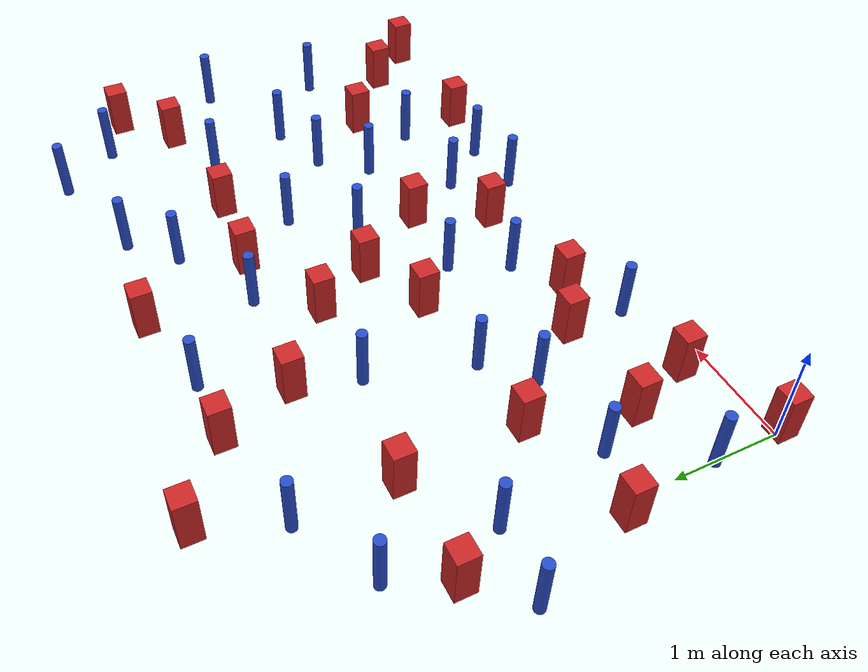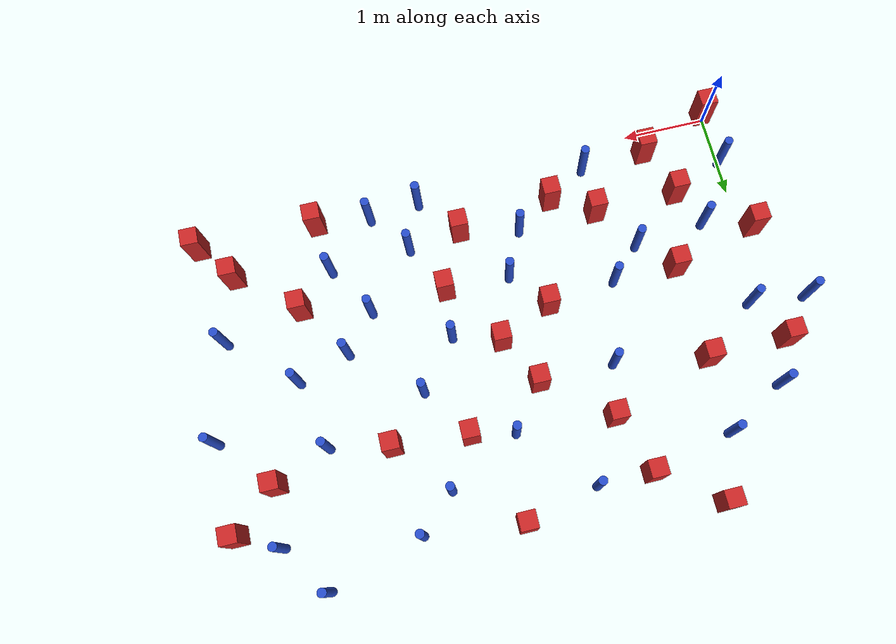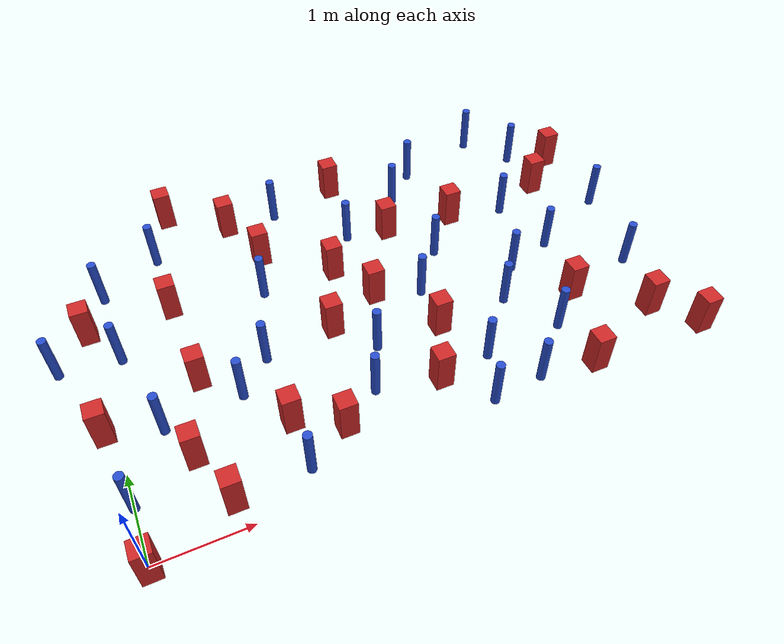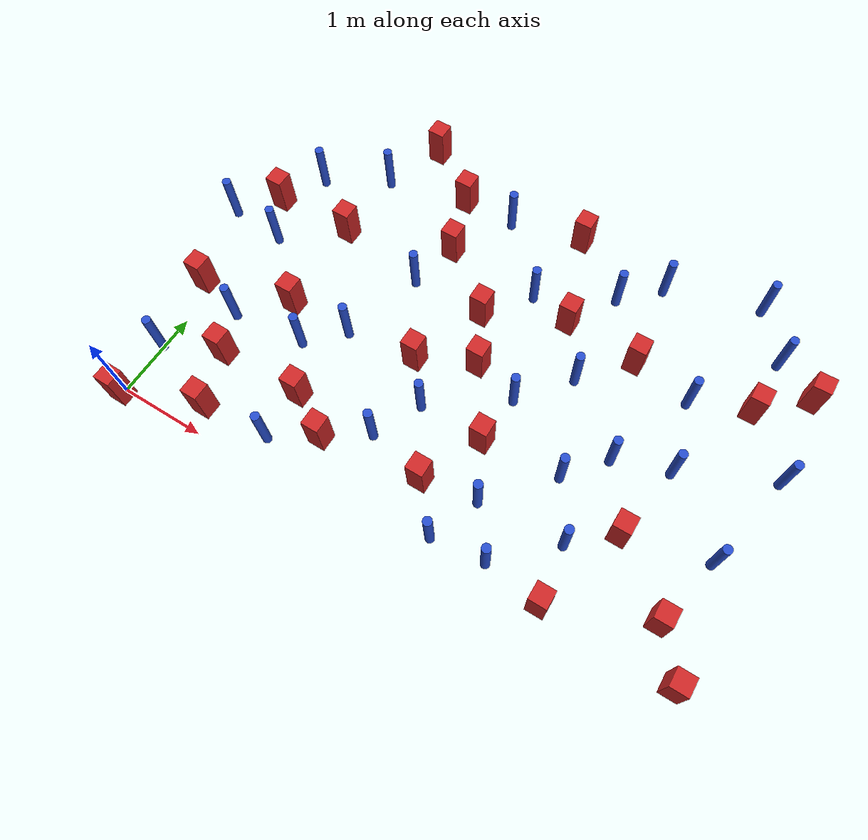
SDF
<sdf version="1.6">
 <model name="dense_29">
  <model name="square_post_obstacle10">
   <static>true</static>
   <pose>0.886683040819 2.95158349716 -6.11067671241e-07 -5.50515727128e-06 -8.79689657224e-07 2.37013304536e-05</pose>
   <link name="link">
    <pose>0 0 0.25 0 -0 0</pose>
    <inertial>
     <mass>100</mass>
     <inertia>
      <ixx>0.166667</ixx>
      <ixy>0</ixy>
      <ixz>0</ixz>
      <iyy>0.166667</iyy>
      <iyz>0</iyz>
      <izz>0.166667</izz>
     </inertia>
    </inertial>
    <collision name="collision"><geometry><box><size>.2 .2 .5</size></box></geometry></collision>
    <visual name="visual">
     <geometry><box><size>.2 .2 .5</size></box></geometry>
     <material>
      <script><name>Gazebo/Red</name><uri>file://media/materials/scripts/gazebo.material</uri></script>
     </material>
    </visual>
   </link>
  </model>
  <model name="pole_obstacle19">
   <static>true</static>
   <pose>1.94640654275 2.77484814485 -9.47619616065e-06 5.49618799737e-07 2.36310414062e-07 -1.55090534798e-07</pose>
   <link name="link">
    <pose>0 0 0.3 0 -0 0</pose>
    <inertial>
     <mass>1</mass>
     <inertia><ixx>0.145833</ixx><ixy>0</ixy><ixz>0</ixz><iyy>0.145833</iyy><iyz>0</iyz><izz>0.125</izz></inertia>
    </inertial>
    <collision name="collision">
     <geometry><cylinder><radius>0.05</radius><length>.6</length></cylinder></geometry>
    </collision>
    <visual name="visual">
     <geometry><cylinder><radius>0.05</radius><length>.6</length></cylinder></geometry>
     <material>
      <script><name>Gazebo/Blue</name><uri>file://media/materials/scripts/gazebo.material</uri></script>
     </material>
    </visual>
   </link>
  </model>
  <model name="square_post_obstacle29">
   <static>true</static>
   <pose>-0.0567404727625 2.93419672478 -6.11067671241e-07 -5.50515727128e-06 -8.79689657224e-07 2.37013304536e-05</pose>
   <link name="link">
    <pose>0 0 0.25 0 -0 0</pose>
    <inertial>
     <mass>100</mass>
     <inertia>
      <ixx>0.166667</ixx>
      <ixy>0</ixy>
      <ixz>0</ixz>
      <iyy>0.166667</iyy>
      <iyz>0</iyz>
      <izz>0.166667</izz>
     </inertia>
    </inertial>
    <collision name="collision"><geometry><box><size>.2 .2 .5</size></box></geometry></collision>
    <visual name="visual">
     <geometry><box><size>.2 .2 .5</size></box></geometry>
     <material>
      <script><name>Gazebo/Red</name><uri>file://media/materials/scripts/gazebo.material</uri></script>
     </material>
    </visual>
   </link>
  </model>
  <model name="pole_obstacle22">
   <static>true</static>
   <pose>4.44462462804 4.13934185821 -9.47619616065e-06 5.49618799737e-07 2.36310414037e-07 -1.55090534814e-07</pose>
   <link name="link">
    <pose>0 0 0.3 0 -0 0</pose>
    <inertial>
     <mass>1</mass>
     <inertia><ixx>0.145833</ixx><ixy>0</ixy><ixz>0</ixz><iyy>0.145833</iyy><iyz>0</iyz><izz>0.125</izz></inertia>
    </inertial>
    <collision name="collision">
     <geometry><cylinder><radius>0.05</radius><length>.6</length></cylinder></geometry>
    </collision>
    <visual name="visual">
     <geometry><cylinder><radius>0.05</radius><length>.6</length></cylinder></geometry>
     <material>
      <script><name>Gazebo/Blue</name><uri>file://media/materials/scripts/gazebo.material</uri></script>
     </material>
    </visual>
   </link>
  </model>
  <model name="pole_obstacle26">
   <static>true</static>
   <pose>5.51467032966 4.46958192493 -9.47619616065e-06 5.49618799737e-07 2.36310414037e-07 -1.55090534814e-07</pose>
   <link name="link">
    <pose>0 0 0.3 0 -0 0</pose>
    <inertial>
     <mass>1</mass>
     <inertia><ixx>0.145833</ixx><ixy>0</ixy><ixz>0</ixz><iyy>0.145833</iyy><iyz>0</iyz><izz>0.125</izz></inertia>
    </inertial>
    <collision name="collision">
     <geometry><cylinder><radius>0.05</radius><length>.6</length></cylinder></geometry>
    </collision>
    <visual name="visual">
     <geometry><cylinder><radius>0.05</radius><length>.6</length></cylinder></geometry>
     <material>
      <script><name>Gazebo/Blue</name><uri>file://media/materials/scripts/gazebo.material</uri></script>
     </material>
    </visual>
   </link>
  </model>
  <model name="square_post_obstacle32">
   <static>true</static>
   <pose>3.12144091782 2.20998211687 -6.11067671241e-07 -5.50515727128e-06 -8.79689657224e-07 2.37013304536e-05</pose>
   <link name="link">
    <pose>0 0 0.25 0 -0 0</pose>
    <inertial>
     <mass>100</mass>
     <inertia>
      <ixx>0.166667</ixx>
      <ixy>0</ixy>
      <ixz>0</ixz>
      <iyy>0.166667</iyy>
      <iyz>0</iyz>
      <izz>0.166667</izz>
     </inertia>
    </inertial>
    <collision name="collision"><geometry><box><size>.2 .2 .5</size></box></geometry></collision>
    <visual name="visual">
     <geometry><box><size>.2 .2 .5</size></box></geometry>
     <material>
      <script><name>Gazebo/Red</name><uri>file://media/materials/scripts/gazebo.material</uri></script>
     </material>
    </visual>
   </link>
  </model>
  <model name="pole_obstacle33">
   <static>true</static>
   <pose>5.92267457255 3.91372418321 -9.47619616065e-06 5.49618799738e-07 2.36310414051e-07 -1.55090534805e-07</pose>
   <link name="link">
    <pose>0 0 0.3 0 -0 0</pose>
    <inertial>
     <mass>1</mass>
     <inertia><ixx>0.145833</ixx><ixy>0</ixy><ixz>0</ixz><iyy>0.145833</iyy><iyz>0</iyz><izz>0.125</izz></inertia>
    </inertial>
    <collision name="collision">
     <geometry><cylinder><radius>0.05</radius><length>.6</length></cylinder></geometry>
    </collision>
    <visual name="visual">
     <geometry><cylinder><radius>0.05</radius><length>.6</length></cylinder></geometry>
     <material>
      <script><name>Gazebo/Blue</name><uri>file://media/materials/scripts/gazebo.material</uri></script>
     </material>
    </visual>
   </link>
  </model>
  <model name="pole_obstacle39">
   <static>true</static>
   <pose>4.0408346083 3.74370026757 -9.47619616065e-06 5.49618799737e-07 2.36310414057e-07 -1.55090534802e-07</pose>
   <link name="link">
    <pose>0 0 0.3 0 -0 0</pose>
    <inertial>
     <mass>1</mass>
     <inertia><ixx>0.145833</ixx><ixy>0</ixy><ixz>0</ixz><iyy>0.145833</iyy><iyz>0</iyz><izz>0.125</izz></inertia>
    </inertial>
    <collision name="collision">
     <geometry><cylinder><radius>0.05</radius><length>.6</length></cylinder></geometry>
    </collision>
    <visual name="visual">
     <geometry><cylinder><radius>0.05</radius><length>.6</length></cylinder></geometry>
     <material>
      <script><name>Gazebo/Blue</name><uri>file://media/materials/scripts/gazebo.material</uri></script>
     </material>
    </visual>
   </link>
  </model>
  <model name="square_post_obstacle43">
   <static>true</static>
   <pose>4.56991591105 3.11451603777 -6.11067671241e-07 -5.50515727128e-06 -8.79689657224e-07 2.37013304536e-05</pose>
   <link name="link">
    <pose>0 0 0.25 0 -0 0</pose>
    <inertial>
     <mass>100</mass>
     <inertia>
      <ixx>0.166667</ixx>
      <ixy>0</ixy>
      <ixz>0</ixz>
      <iyy>0.166667</iyy>
      <iyz>0</iyz>
      <izz>0.166667</izz>
     </inertia>
    </inertial>
    <collision name="collision"><geometry><box><size>.2 .2 .5</size></box></geometry></collision>
    <visual name="visual">
     <geometry><box><size>.2 .2 .5</size></box></geometry>
     <material>
      <script><name>Gazebo/Red</name><uri>file://media/materials/scripts/gazebo.material</uri></script>
     </material>
    </visual>
   </link>
  </model>
  <model name="square_post_obstacle47">
   <static>true</static>
   <pose>3.29083783248 0.779698672966 -6.11067671241e-07 -5.50515727128e-06 -8.79689657224e-07 2.37013304536e-05</pose>
   <link name="link">
    <pose>0 0 0.25 0 -0 0</pose>
    <inertial>
     <mass>100</mass>
     <inertia>
      <ixx>0.166667</ixx>
      <ixy>0</ixy>
      <ixz>0</ixz>
      <iyy>0.166667</iyy>
      <iyz>0</iyz>
      <izz>0.166667</izz>
     </inertia>
    </inertial>
    <collision name="collision"><geometry><box><size>.2 .2 .5</size></box></geometry></collision>
    <visual name="visual">
     <geometry><box><size>.2 .2 .5</size></box></geometry>
     <material>
      <script><name>Gazebo/Red</name><uri>file://media/materials/scripts/gazebo.material</uri></script>
     </material>
    </visual>
   </link>
  </model>
  <model name="square_post_obstacle57">
   <static>true</static>
   <pose>2.09698442097 3.36153233172 -6.11067671241e-07 -5.50515727128e-06 -8.79689657224e-07 2.37013304536e-05</pose>
   <link name="link">
    <pose>0 0 0.25 0 -0 0</pose>
    <inertial>
     <mass>100</mass>
     <inertia>
      <ixx>0.166667</ixx>
      <ixy>0</ixy>
      <ixz>0</ixz>
      <iyy>0.166667</iyy>
      <iyz>0</iyz>
      <izz>0.166667</izz>
     </inertia>
    </inertial>
    <collision name="collision"><geometry><box><size>.2 .2 .5</size></box></geometry></collision>
    <visual name="visual">
     <geometry><box><size>.2 .2 .5</size></box></geometry>
     <material>
      <script><name>Gazebo/Red</name><uri>file://media/materials/scripts/gazebo.material</uri></script>
     </material>
    </visual>
   </link>
  </model>
  <model name="pole_obstacle62">
   <static>true</static>
   <pose>-0.000759260955243 0.616112688079 -9.47619616065e-06 5.49618799737e-07 2.36310414053e-07 -1.55090534805e-07</pose>
   <link name="link">
    <pose>0 0 0.3 0 -0 0</pose>
    <inertial>
     <mass>1</mass>
     <inertia><ixx>0.145833</ixx><ixy>0</ixy><ixz>0</ixz><iyy>0.145833</iyy><iyz>0</iyz><izz>0.125</izz></inertia>
    </inertial>
    <collision name="collision">
     <geometry><cylinder><radius>0.05</radius><length>.6</length></cylinder></geometry>
    </collision>
    <visual name="visual">
     <geometry><cylinder><radius>0.05</radius><length>.6</length></cylinder></geometry>
     <material>
      <script><name>Gazebo/Blue</name><uri>file://media/materials/scripts/gazebo.material</uri></script>
     </material>
    </visual>
   </link>
  </model>
  <model name="square_post_obstacle72">
   <static>true</static>
   <pose>4.92912573434 0.302919939772 -6.11067671241e-07 -5.50515727128e-06 -8.79689657224e-07 2.37013304536e-05</pose>
   <link name="link">
    <pose>0 0 0.25 0 -0 0</pose>
    <inertial>
     <mass>100</mass>
     <inertia>
      <ixx>0.166667</ixx>
      <ixy>0</ixy>
      <ixz>0</ixz>
      <iyy>0.166667</iyy>
      <iyz>0</iyz>
      <izz>0.166667</izz>
     </inertia>
    </inertial>
    <collision name="collision"><geometry><box><size>.2 .2 .5</size></box></geometry></collision>
    <visual name="visual">
     <geometry><box><size>.2 .2 .5</size></box></geometry>
     <material>
      <script><name>Gazebo/Red</name><uri>file://media/materials/scripts/gazebo.material</uri></script>
     </material>
    </visual>
   </link>
  </model>
  <model name="pole_obstacle71">
   <static>true</static>
   <pose>-0.44475211655 2.50794854495 -9.47619616065e-06 5.49618799738e-07 2.36310414065e-07 -1.55090534798e-07</pose>
   <link name="link">
    <pose>0 0 0.3 0 -0 0</pose>
    <inertial>
     <mass>1</mass>
     <inertia><ixx>0.145833</ixx><ixy>0</ixy><ixz>0</ixz><iyy>0.145833</iyy><iyz>0</iyz><izz>0.125</izz></inertia>
    </inertial>
    <collision name="collision">
     <geometry><cylinder><radius>0.05</radius><length>.6</length></cylinder></geometry>
    </collision>
    <visual name="visual">
     <geometry><cylinder><radius>0.05</radius><length>.6</length></cylinder></geometry>
     <material>
      <script><name>Gazebo/Blue</name><uri>file://media/materials/scripts/gazebo.material</uri></script>
     </material>
    </visual>
   </link>
  </model>
  <model name="pole_obstacle80">
   <static>true</static>
   <pose>6.45289074793 2.63987264285 -9.47619616065e-06 5.49618799738e-07 2.36310414051e-07 -1.55090534805e-07</pose>
   <link name="link">
    <pose>0 0 0.3 0 -0 0</pose>
    <inertial>
     <mass>1</mass>
     <inertia><ixx>0.145833</ixx><ixy>0</ixy><ixz>0</ixz><iyy>0.145833</iyy><iyz>0</iyz><izz>0.125</izz></inertia>
    </inertial>
    <collision name="collision">
     <geometry><cylinder><radius>0.05</radius><length>.6</length></cylinder></geometry>
    </collision>
    <visual name="visual">
     <geometry><cylinder><radius>0.05</radius><length>.6</length></cylinder></geometry>
     <material>
      <script><name>Gazebo/Blue</name><uri>file://media/materials/scripts/gazebo.material</uri></script>
     </material>
    </visual>
   </link>
  </model>
  <model name="pole_obstacle83">
   <static>true</static>
   <pose>2.48656387706 4.06005906577 -9.47619616065e-06 5.49618799738e-07 2.3631041406e-07 -1.55090534801e-07</pose>
   <link name="link">
    <pose>0 0 0.3 0 -0 0</pose>
    <inertial>
     <mass>1</mass>
     <inertia><ixx>0.145833</ixx><ixy>0</ixy><ixz>0</ixz><iyy>0.145833</iyy><iyz>0</iyz><izz>0.125</izz></inertia>
    </inertial>
    <collision name="collision">
     <geometry><cylinder><radius>0.05</radius><length>.6</length></cylinder></geometry>
    </collision>
    <visual name="visual">
     <geometry><cylinder><radius>0.05</radius><length>.6</length></cylinder></geometry>
     <material>
      <script><name>Gazebo/Blue</name><uri>file://media/materials/scripts/gazebo.material</uri></script>
     </material>
    </visual>
   </link>
  </model>
  <model name="pole_obstacle95">
   <static>true</static>
   <pose>0.194821865127 3.44176154237 -9.47619616065e-06 5.49618799738e-07 2.36310414068e-07 -1.55090534794e-07</pose>
   <link name="link">
    <pose>0 0 0.3 0 -0 0</pose>
    <inertial>
     <mass>1</mass>
     <inertia><ixx>0.145833</ixx><ixy>0</ixy><ixz>0</ixz><iyy>0.145833</iyy><iyz>0</iyz><izz>0.125</izz></inertia>
    </inertial>
    <collision name="collision">
     <geometry><cylinder><radius>0.05</radius><length>.6</length></cylinder></geometry>
    </collision>
    <visual name="visual">
     <geometry><cylinder><radius>0.05</radius><length>.6</length></cylinder></geometry>
     <material>
      <script><name>Gazebo/Blue</name><uri>file://media/materials/scripts/gazebo.material</uri></script>
     </material>
    </visual>
   </link>
  </model>
  <model name="square_post_obstacle86">
   <static>true</static>
   <pose>3.70826879592 3.18764989912 -6.11067671241e-07 -5.50515727128e-06 -8.79689657224e-07 2.37013304536e-05</pose>
   <link name="link">
    <pose>0 0 0.25 0 -0 0</pose>
    <inertial>
     <mass>100</mass>
     <inertia>
      <ixx>0.166667</ixx>
      <ixy>0</ixy>
      <ixz>0</ixz>
      <iyy>0.166667</iyy>
      <iyz>0</iyz>
      <izz>0.166667</izz>
     </inertia>
    </inertial>
    <collision name="collision"><geometry><box><size>.2 .2 .5</size></box></geometry></collision>
    <visual name="visual">
     <geometry><box><size>.2 .2 .5</size></box></geometry>
     <material>
      <script><name>Gazebo/Red</name><uri>file://media/materials/scripts/gazebo.material</uri></script>
     </material>
    </visual>
   </link>
  </model>
  <model name="pole_obstacle99">
   <static>true</static>
   <pose>4.49547687015 1.53703083934 -9.47619616065e-06 5.49618799738e-07 2.36310414071e-07 -1.55090534796e-07</pose>
   <link name="link">
    <pose>0 0 0.3 0 -0 0</pose>
    <inertial>
     <mass>1</mass>
     <inertia><ixx>0.145833</ixx><ixy>0</ixy><ixz>0</ixz><iyy>0.145833</iyy><iyz>0</iyz><izz>0.125</izz></inertia>
    </inertial>
    <collision name="collision">
     <geometry><cylinder><radius>0.05</radius><length>.6</length></cylinder></geometry>
    </collision>
    <visual name="visual">
     <geometry><cylinder><radius>0.05</radius><length>.6</length></cylinder></geometry>
     <material>
      <script><name>Gazebo/Blue</name><uri>file://media/materials/scripts/gazebo.material</uri></script>
     </material>
    </visual>
   </link>
  </model>
  <model name="pole_obstacle102">
   <static>true</static>
   <pose>3.69176325658 0.317272816211 -9.47619616065e-06 5.49618799738e-07 2.36310414074e-07 -1.55090534794e-07</pose>
   <link name="link">
    <pose>0 0 0.3 0 -0 0</pose>
    <inertial>
     <mass>1</mass>
     <inertia><ixx>0.145833</ixx><ixy>0</ixy><ixz>0</ixz><iyy>0.145833</iyy><iyz>0</iyz><izz>0.125</izz></inertia>
    </inertial>
    <collision name="collision">
     <geometry><cylinder><radius>0.05</radius><length>.6</length></cylinder></geometry>
    </collision>
    <visual name="visual">
     <geometry><cylinder><radius>0.05</radius><length>.6</length></cylinder></geometry>
     <material>
      <script><name>Gazebo/Blue</name><uri>file://media/materials/scripts/gazebo.material</uri></script>
     </material>
    </visual>
   </link>
  </model>
  <model name="square_post_obstacle93">
   <static>true</static>
   <pose>1.65990992299 0.913257082517 -6.11067671241e-07 -5.50515727128e-06 -8.79689657224e-07 2.37013304536e-05</pose>
   <link name="link">
    <pose>0 0 0.25 0 -0 0</pose>
    <inertial>
     <mass>100</mass>
     <inertia>
      <ixx>0.166667</ixx>
      <ixy>0</ixy>
      <ixz>0</ixz>
      <iyy>0.166667</iyy>
      <iyz>0</iyz>
      <izz>0.166667</izz>
     </inertia>
    </inertial>
    <collision name="collision"><geometry><box><size>.2 .2 .5</size></box></geometry></collision>
    <visual name="visual">
     <geometry><box><size>.2 .2 .5</size></box></geometry>
     <material>
      <script><name>Gazebo/Red</name><uri>file://media/materials/scripts/gazebo.material</uri></script>
     </material>
    </visual>
   </link>
  </model>
  <model name="pole_obstacle108">
   <static>true</static>
   <pose>5.2613600659 2.97364509109 -9.47619616065e-06 5.49618799738e-07 2.36310414051e-07 -1.55090534805e-07</pose>
   <link name="link">
    <pose>0 0 0.3 0 -0 0</pose>
    <inertial>
     <mass>1</mass>
     <inertia><ixx>0.145833</ixx><ixy>0</ixy><ixz>0</ixz><iyy>0.145833</iyy><iyz>0</iyz><izz>0.125</izz></inertia>
    </inertial>
    <collision name="collision">
     <geometry><cylinder><radius>0.05</radius><length>.6</length></cylinder></geometry>
    </collision>
    <visual name="visual">
     <geometry><cylinder><radius>0.05</radius><length>.6</length></cylinder></geometry>
     <material>
      <script><name>Gazebo/Blue</name><uri>file://media/materials/scripts/gazebo.material</uri></script>
     </material>
    </visual>
   </link>
  </model>
  <model name="pole_obstacle109">
   <static>true</static>
   <pose>0.220281164585 2.44343734604 -9.4761961606e-06 5.49618799729e-07 2.36310413995e-07 -1.55090534826e-07</pose>
   <link name="link">
    <pose>0 0 0.3 0 -0 0</pose>
    <inertial>
     <mass>1</mass>
     <inertia><ixx>0.145833</ixx><ixy>0</ixy><ixz>0</ixz><iyy>0.145833</iyy><iyz>0</iyz><izz>0.125</izz></inertia>
    </inertial>
    <collision name="collision">
     <geometry><cylinder><radius>0.05</radius><length>.6</length></cylinder></geometry>
    </collision>
    <visual name="visual">
     <geometry><cylinder><radius>0.05</radius><length>.6</length></cylinder></geometry>
     <material>
      <script><name>Gazebo/Blue</name><uri>file://media/materials/scripts/gazebo.material</uri></script>
     </material>
    </visual>
   </link>
  </model>
  <model name="pole_obstacle111">
   <static>true</static>
   <pose>0.44804380961 1.35320798955 -9.47619616065e-06 5.49618799738e-07 2.3631041406e-07 -1.550905348e-07</pose>
   <link name="link">
    <pose>0 0 0.3 0 -0 0</pose>
    <inertial>
     <mass>1</mass>
     <inertia><ixx>0.145833</ixx><ixy>0</ixy><ixz>0</ixz><iyy>0.145833</iyy><iyz>0</iyz><izz>0.125</izz></inertia>
    </inertial>
    <collision name="collision">
     <geometry><cylinder><radius>0.05</radius><length>.6</length></cylinder></geometry>
    </collision>
    <visual name="visual">
     <geometry><cylinder><radius>0.05</radius><length>.6</length></cylinder></geometry>
     <material>
      <script><name>Gazebo/Blue</name><uri>file://media/materials/scripts/gazebo.material</uri></script>
     </material>
    </visual>
   </link>
  </model>
  <model name="square_post_obstacle104">
   <static>true</static>
   <pose>3.33541497234 4.26242279569 -6.11067671241e-07 -5.50515727128e-06 -8.79689657224e-07 2.37013304536e-05</pose>
   <link name="link">
    <pose>0 0 0.25 0 -0 0</pose>
    <inertial>
     <mass>100</mass>
     <inertia>
      <ixx>0.166667</ixx>
      <ixy>0</ixy>
      <ixz>0</ixz>
      <iyy>0.166667</iyy>
      <iyz>0</iyz>
      <izz>0.166667</izz>
     </inertia>
    </inertial>
    <collision name="collision"><geometry><box><size>.2 .2 .5</size></box></geometry></collision>
    <visual name="visual">
     <geometry><box><size>.2 .2 .5</size></box></geometry>
     <material>
      <script><name>Gazebo/Red</name><uri>file://media/materials/scripts/gazebo.material</uri></script>
     </material>
    </visual>
   </link>
  </model>
  <model name="pole_obstacle124">
   <static>true</static>
   <pose>5.45216487929 2.16566190846 -9.47619616065e-06 5.49618799738e-07 2.36310414051e-07 -1.55090534805e-07</pose>
   <link name="link">
    <pose>0 0 0.3 0 -0 0</pose>
    <inertial>
     <mass>1</mass>
     <inertia><ixx>0.145833</ixx><ixy>0</ixy><ixz>0</ixz><iyy>0.145833</iyy><iyz>0</iyz><izz>0.125</izz></inertia>
    </inertial>
    <collision name="collision">
     <geometry><cylinder><radius>0.05</radius><length>.6</length></cylinder></geometry>
    </collision>
    <visual name="visual">
     <geometry><cylinder><radius>0.05</radius><length>.6</length></cylinder></geometry>
     <material>
      <script><name>Gazebo/Blue</name><uri>file://media/materials/scripts/gazebo.material</uri></script>
     </material>
    </visual>
   </link>
  </model>
  <model name="square_post_obstacle113">
   <static>true</static>
   <pose>1.18039383356 4.5429833093 -6.11067671241e-07 -5.50515727128e-06 -8.79689657224e-07 2.37013304536e-05</pose>
   <link name="link">
    <pose>0 0 0.25 0 -0 0</pose>
    <inertial>
     <mass>100</mass>
     <inertia>
      <ixx>0.166667</ixx>
      <ixy>0</ixy>
      <ixz>0</ixz>
      <iyy>0.166667</iyy>
      <iyz>0</iyz>
      <izz>0.166667</izz>
     </inertia>
    </inertial>
    <collision name="collision"><geometry><box><size>.2 .2 .5</size></box></geometry></collision>
    <visual name="visual">
     <geometry><box><size>.2 .2 .5</size></box></geometry>
     <material>
      <script><name>Gazebo/Red</name><uri>file://media/materials/scripts/gazebo.material</uri></script>
     </material>
    </visual>
   </link>
  </model>
  <model name="pole_obstacle129">
   <static>true</static>
   <pose>3.21252405138 3.29230926636 -9.47619616065e-06 5.49618799737e-07 2.36310414051e-07 -1.55090534807e-07</pose>
   <link name="link">
    <pose>0 0 0.3 0 -0 0</pose>
    <inertial>
     <mass>1</mass>
     <inertia><ixx>0.145833</ixx><ixy>0</ixy><ixz>0</ixz><iyy>0.145833</iyy><iyz>0</iyz><izz>0.125</izz></inertia>
    </inertial>
    <collision name="collision">
     <geometry><cylinder><radius>0.05</radius><length>.6</length></cylinder></geometry>
    </collision>
    <visual name="visual">
     <geometry><cylinder><radius>0.05</radius><length>.6</length></cylinder></geometry>
     <material>
      <script><name>Gazebo/Blue</name><uri>file://media/materials/scripts/gazebo.material</uri></script>
     </material>
    </visual>
   </link>
  </model>
  <model name="pole_obstacle137">
   <static>true</static>
   <pose>1.65937462595 0.332707025976 -9.47619616065e-06 5.49618799737e-07 2.36310414064e-07 -1.55090534799e-07</pose>
   <link name="link">
    <pose>0 0 0.3 0 -0 0</pose>
    <inertial>
     <mass>1</mass>
     <inertia><ixx>0.145833</ixx><ixy>0</ixy><ixz>0</ixz><iyy>0.145833</iyy><iyz>0</iyz><izz>0.125</izz></inertia>
    </inertial>
    <collision name="collision">
     <geometry><cylinder><radius>0.05</radius><length>.6</length></cylinder></geometry>
    </collision>
    <visual name="visual">
     <geometry><cylinder><radius>0.05</radius><length>.6</length></cylinder></geometry>
     <material>
      <script><name>Gazebo/Blue</name><uri>file://media/materials/scripts/gazebo.material</uri></script>
     </material>
    </visual>
   </link>
  </model>
  <model name="square_post_obstacle119">
   <static>true</static>
   <pose>0.660608247861 0.899368994628 -6.11067671241e-07 -5.50515727128e-06 -8.79689657224e-07 2.37013304536e-05</pose>
   <link name="link">
    <pose>0 0 0.25 0 -0 0</pose>
    <inertial>
     <mass>100</mass>
     <inertia>
      <ixx>0.166667</ixx>
      <ixy>0</ixy>
      <ixz>0</ixz>
      <iyy>0.166667</iyy>
      <iyz>0</iyz>
      <izz>0.166667</izz>
     </inertia>
    </inertial>
    <collision name="collision"><geometry><box><size>.2 .2 .5</size></box></geometry></collision>
    <visual name="visual">
     <geometry><box><size>.2 .2 .5</size></box></geometry>
     <material>
      <script><name>Gazebo/Red</name><uri>file://media/materials/scripts/gazebo.material</uri></script>
     </material>
    </visual>
   </link>
  </model>
  <model name="square_post_obstacle121">
   <static>true</static>
   <pose>3.61079938093 1.46418794623 -6.11067671241e-07 -5.50515727128e-06 -8.79689657224e-07 2.37013304536e-05</pose>
   <link name="link">
    <pose>0 0 0.25 0 -0 0</pose>
    <inertial>
     <mass>100</mass>
     <inertia>
      <ixx>0.166667</ixx>
      <ixy>0</ixy>
      <ixz>0</ixz>
      <iyy>0.166667</iyy>
      <iyz>0</iyz>
      <izz>0.166667</izz>
     </inertia>
    </inertial>
    <collision name="collision"><geometry><box><size>.2 .2 .5</size></box></geometry></collision>
    <visual name="visual">
     <geometry><box><size>.2 .2 .5</size></box></geometry>
     <material>
      <script><name>Gazebo/Red</name><uri>file://media/materials/scripts/gazebo.material</uri></script>
     </material>
    </visual>
   </link>
  </model>
  <model name="pole_obstacle140">
   <static>true</static>
   <pose>2.84874275532 1.47842235534 -9.47619616065e-06 5.49618799737e-07 2.36310414072e-07 -1.55090534793e-07</pose>
   <link name="link">
    <pose>0 0 0.3 0 -0 0</pose>
    <inertial>
     <mass>1</mass>
     <inertia><ixx>0.145833</ixx><ixy>0</ixy><ixz>0</ixz><iyy>0.145833</iyy><iyz>0</iyz><izz>0.125</izz></inertia>
    </inertial>
    <collision name="collision">
     <geometry><cylinder><radius>0.05</radius><length>.6</length></cylinder></geometry>
    </collision>
    <visual name="visual">
     <geometry><cylinder><radius>0.05</radius><length>.6</length></cylinder></geometry>
     <material>
      <script><name>Gazebo/Blue</name><uri>file://media/materials/scripts/gazebo.material</uri></script>
     </material>
    </visual>
   </link>
  </model>
  <model name="pole_obstacle142">
   <static>true</static>
   <pose>3.91156503805 0.874002899609 -9.47619616065e-06 5.49618799738e-07 2.36310414075e-07 -1.55090534793e-07</pose>
   <link name="link">
    <pose>0 0 0.3 0 -0 0</pose>
    <inertial>
     <mass>1</mass>
     <inertia><ixx>0.145833</ixx><ixy>0</ixy><ixz>0</ixz><iyy>0.145833</iyy><iyz>0</iyz><izz>0.125</izz></inertia>
    </inertial>
    <collision name="collision">
     <geometry><cylinder><radius>0.05</radius><length>.6</length></cylinder></geometry>
    </collision>
    <visual name="visual">
     <geometry><cylinder><radius>0.05</radius><length>.6</length></cylinder></geometry>
     <material>
      <script><name>Gazebo/Blue</name><uri>file://media/materials/scripts/gazebo.material</uri></script>
     </material>
    </visual>
   </link>
  </model>
  <model name="square_post_obstacle132">
   <static>true</static>
   <pose>5.88919421658 3.23397509613 -6.11067671241e-07 -5.50515727128e-06 -8.79689657224e-07 2.37013304536e-05</pose>
   <link name="link">
    <pose>0 0 0.25 0 -0 0</pose>
    <inertial>
     <mass>100</mass>
     <inertia>
      <ixx>0.166667</ixx>
      <ixy>0</ixy>
      <ixz>0</ixz>
      <iyy>0.166667</iyy>
      <iyz>0</iyz>
      <izz>0.166667</izz>
     </inertia>
    </inertial>
    <collision name="collision"><geometry><box><size>.2 .2 .5</size></box></geometry></collision>
    <visual name="visual">
     <geometry><box><size>.2 .2 .5</size></box></geometry>
     <material>
      <script><name>Gazebo/Red</name><uri>file://media/materials/scripts/gazebo.material</uri></script>
     </material>
    </visual>
   </link>
  </model>
  <model name="square_post_obstacle133">
   <static>true</static>
   <pose>2.49105647197 1.919635386 -6.11067671241e-07 -5.50515727128e-06 -8.79689657224e-07 2.37013304536e-05</pose>
   <link name="link">
    <pose>0 0 0.25 0 -0 0</pose>
    <inertial>
     <mass>100</mass>
     <inertia>
      <ixx>0.166667</ixx>
      <ixy>0</ixy>
      <ixz>0</ixz>
      <iyy>0.166667</iyy>
      <iyz>0</iyz>
      <izz>0.166667</izz>
     </inertia>
    </inertial>
    <collision name="collision"><geometry><box><size>.2 .2 .5</size></box></geometry></collision>
    <visual name="visual">
     <geometry><box><size>.2 .2 .5</size></box></geometry>
     <material>
      <script><name>Gazebo/Red</name><uri>file://media/materials/scripts/gazebo.material</uri></script>
     </material>
    </visual>
   </link>
  </model>
  <model name="square_post_obstacle136">
   <static>true</static>
   <pose>5.28022903943 1.31255972653 -6.11067671241e-07 -5.50515727128e-06 -8.79689657224e-07 2.37013304536e-05</pose>
   <link name="link">
    <pose>0 0 0.25 0 -0 0</pose>
    <inertial>
     <mass>100</mass>
     <inertia>
      <ixx>0.166667</ixx>
      <ixy>0</ixy>
      <ixz>0</ixz>
      <iyy>0.166667</iyy>
      <iyz>0</iyz>
      <izz>0.166667</izz>
     </inertia>
    </inertial>
    <collision name="collision"><geometry><box><size>.2 .2 .5</size></box></geometry></collision>
    <visual name="visual">
     <geometry><box><size>.2 .2 .5</size></box></geometry>
     <material>
      <script><name>Gazebo/Red</name><uri>file://media/materials/scripts/gazebo.material</uri></script>
     </material>
    </visual>
   </link>
  </model>
  <model name="pole_obstacle163">
   <static>true</static>
   <pose>1.67173122236 1.8161475873 -9.47619616065e-06 5.49618799737e-07 2.36310414065e-07 -1.55090534798e-07</pose>
   <link name="link">
    <pose>0 0 0.3 0 -0 0</pose>
    <inertial>
     <mass>1</mass>
     <inertia><ixx>0.145833</ixx><ixy>0</ixy><ixz>0</ixz><iyy>0.145833</iyy><iyz>0</iyz><izz>0.125</izz></inertia>
    </inertial>
    <collision name="collision">
     <geometry><cylinder><radius>0.05</radius><length>.6</length></cylinder></geometry>
    </collision>
    <visual name="visual">
     <geometry><cylinder><radius>0.05</radius><length>.6</length></cylinder></geometry>
     <material>
      <script><name>Gazebo/Blue</name><uri>file://media/materials/scripts/gazebo.material</uri></script>
     </material>
    </visual>
   </link>
  </model>
  <model name="pole_obstacle175">
   <static>true</static>
   <pose>4.10727523658 2.60019848755 -9.47619616065e-06 5.49618799738e-07 2.36310414051e-07 -1.55090534805e-07</pose>
   <link name="link">
    <pose>0 0 0.3 0 -0 0</pose>
    <inertial>
     <mass>1</mass>
     <inertia><ixx>0.145833</ixx><ixy>0</ixy><ixz>0</ixz><iyy>0.145833</iyy><iyz>0</iyz><izz>0.125</izz></inertia>
    </inertial>
    <collision name="collision">
     <geometry><cylinder><radius>0.05</radius><length>.6</length></cylinder></geometry>
    </collision>
    <visual name="visual">
     <geometry><cylinder><radius>0.05</radius><length>.6</length></cylinder></geometry>
     <material>
      <script><name>Gazebo/Blue</name><uri>file://media/materials/scripts/gazebo.material</uri></script>
     </material>
    </visual>
   </link>
  </model>
  <model name="pole_obstacle176">
   <static>true</static>
   <pose>2.59487386044 0.937420534749 -9.47619616065e-06 5.49618799738e-07 2.36310414075e-07 -1.55090534793e-07</pose>
   <link name="link">
    <pose>0 0 0.3 0 -0 0</pose>
    <inertial>
     <mass>1</mass>
     <inertia><ixx>0.145833</ixx><ixy>0</ixy><ixz>0</ixz><iyy>0.145833</iyy><iyz>0</iyz><izz>0.125</izz></inertia>
    </inertial>
    <collision name="collision">
     <geometry><cylinder><radius>0.05</radius><length>.6</length></cylinder></geometry>
    </collision>
    <visual name="visual">
     <geometry><cylinder><radius>0.05</radius><length>.6</length></cylinder></geometry>
     <material>
      <script><name>Gazebo/Blue</name><uri>file://media/materials/scripts/gazebo.material</uri></script>
     </material>
    </visual>
   </link>
  </model>
  <model name="square_post_obstacle168">
   <static>true</static>
   <pose>0.880535982979 0.285373689313 -6.11067671241e-07 -5.50515727128e-06 -8.79689657224e-07 2.37013304536e-05</pose>
   <link name="link">
    <pose>0 0 0.25 0 -0 0</pose>
    <inertial>
     <mass>100</mass>
     <inertia>
      <ixx>0.166667</ixx>
      <ixy>0</ixy>
      <ixz>0</ixz>
      <iyy>0.166667</iyy>
      <iyz>0</iyz>
      <izz>0.166667</izz>
     </inertia>
    </inertial>
    <collision name="collision"><geometry><box><size>.2 .2 .5</size></box></geometry></collision>
    <visual name="visual">
     <geometry><box><size>.2 .2 .5</size></box></geometry>
     <material>
      <script><name>Gazebo/Red</name><uri>file://media/materials/scripts/gazebo.material</uri></script>
     </material>
    </visual>
   </link>
  </model>
  <model name="pole_obstacle179">
   <static>true</static>
   <pose>4.85219035946 1.96696996839 -9.47619616065e-06 5.49618799737e-07 2.36310414075e-07 -1.55090534793e-07</pose>
   <link name="link">
    <pose>0 0 0.3 0 -0 0</pose>
    <inertial>
     <mass>1</mass>
     <inertia><ixx>0.145833</ixx><ixy>0</ixy><ixz>0</ixz><iyy>0.145833</iyy><iyz>0</iyz><izz>0.125</izz></inertia>
    </inertial>
    <collision name="collision">
     <geometry><cylinder><radius>0.05</radius><length>.6</length></cylinder></geometry>
    </collision>
    <visual name="visual">
     <geometry><cylinder><radius>0.05</radius><length>.6</length></cylinder></geometry>
     <material>
      <script><name>Gazebo/Blue</name><uri>file://media/materials/scripts/gazebo.material</uri></script>
     </material>
    </visual>
   </link>
  </model>
  <model name="pole_obstacle181">
   <static>true</static>
   <pose>0.900301745311 3.83818215545 -9.47619616065e-06 5.49618799737e-07 2.36310414066e-07 -1.55090534797e-07</pose>
   <link name="link">
    <pose>0 0 0.3 0 -0 0</pose>
    <inertial>
     <mass>1</mass>
     <inertia><ixx>0.145833</ixx><ixy>0</ixy><ixz>0</ixz><iyy>0.145833</iyy><iyz>0</iyz><izz>0.125</izz></inertia>
    </inertial>
    <collision name="collision">
     <geometry><cylinder><radius>0.05</radius><length>.6</length></cylinder></geometry>
    </collision>
    <visual name="visual">
     <geometry><cylinder><radius>0.05</radius><length>.6</length></cylinder></geometry>
     <material>
      <script><name>Gazebo/Blue</name><uri>file://media/materials/scripts/gazebo.material</uri></script>
     </material>
    </visual>
   </link>
  </model>
  <model name="pole_obstacle186">
   <static>true</static>
   <pose>3.65883767363 2.04408064652 -9.47619616065e-06 5.49618799737e-07 2.36310414066e-07 -1.55090534797e-07</pose>
   <link name="link">
    <pose>0 0 0.3 0 -0 0</pose>
    <inertial>
     <mass>1</mass>
     <inertia><ixx>0.145833</ixx><ixy>0</ixy><ixz>0</ixz><iyy>0.145833</iyy><iyz>0</iyz><izz>0.125</izz></inertia>
    </inertial>
    <collision name="collision">
     <geometry><cylinder><radius>0.05</radius><length>.6</length></cylinder></geometry>
    </collision>
    <visual name="visual">
     <geometry><cylinder><radius>0.05</radius><length>.6</length></cylinder></geometry>
     <material>
      <script><name>Gazebo/Blue</name><uri>file://media/materials/scripts/gazebo.material</uri></script>
     </material>
    </visual>
   </link>
  </model>
  <model name="square_post_obstacle179">
   <static>true</static>
   <pose>6.33370451504 0.285923487393 -6.11067671241e-07 -5.50515727128e-06 -8.79689657224e-07 2.37013304536e-05</pose>
   <link name="link">
    <pose>0 0 0.25 0 -0 0</pose>
    <inertial>
     <mass>100</mass>
     <inertia>
      <ixx>0.166667</ixx>
      <ixy>0</ixy>
      <ixz>0</ixz>
      <iyy>0.166667</iyy>
      <iyz>0</iyz>
      <izz>0.166667</izz>
     </inertia>
    </inertial>
    <collision name="collision"><geometry><box><size>.2 .2 .5</size></box></geometry></collision>
    <visual name="visual">
     <geometry><box><size>.2 .2 .5</size></box></geometry>
     <material>
      <script><name>Gazebo/Red</name><uri>file://media/materials/scripts/gazebo.material</uri></script>
     </material>
    </visual>
   </link>
  </model>
  <model name="square_post_obstacle181">
   <static>true</static>
   <pose>6.38586840309 3.67914417136 -6.11067671241e-07 -5.50515727128e-06 -8.79689657224e-07 2.37013304536e-05</pose>
   <link name="link">
    <pose>0 0 0.25 0 -0 0</pose>
    <inertial>
     <mass>100</mass>
     <inertia>
      <ixx>0.166667</ixx>
      <ixy>0</ixy>
      <ixz>0</ixz>
      <iyy>0.166667</iyy>
      <iyz>0</iyz>
      <izz>0.166667</izz>
     </inertia>
    </inertial>
    <collision name="collision"><geometry><box><size>.2 .2 .5</size></box></geometry></collision>
    <visual name="visual">
     <geometry><box><size>.2 .2 .5</size></box></geometry>
     <material>
      <script><name>Gazebo/Red</name><uri>file://media/materials/scripts/gazebo.material</uri></script>
     </material>
    </visual>
   </link>
  </model>
  <model name="square_post_obstacle188">
   <static>true</static>
   <pose>1.86351256091 4.05508486864 -6.11067671241e-07 -5.50515727128e-06 -8.79689657224e-07 2.37013304536e-05</pose>
   <link name="link">
    <pose>0 0 0.25 0 -0 0</pose>
    <inertial>
     <mass>100</mass>
     <inertia>
      <ixx>0.166667</ixx>
      <ixy>0</ixy>
      <ixz>0</ixz>
      <iyy>0.166667</iyy>
      <iyz>0</iyz>
      <izz>0.166667</izz>
     </inertia>
    </inertial>
    <collision name="collision"><geometry><box><size>.2 .2 .5</size></box></geometry></collision>
    <visual name="visual">
     <geometry><box><size>.2 .2 .5</size></box></geometry>
     <material>
      <script><name>Gazebo/Red</name><uri>file://media/materials/scripts/gazebo.material</uri></script>
     </material>
    </visual>
   </link>
  </model>
  <model name="square_post_obstacle193">
   <static>true</static>
   <pose>0.926591367105 1.81218351648 -6.11067671241e-07 -5.50515727128e-06 -8.79689657224e-07 2.37013304536e-05</pose>
   <link name="link">
    <pose>0 0 0.25 0 -0 0</pose>
    <inertial>
     <mass>100</mass>
     <inertia>
      <ixx>0.166667</ixx>
      <ixy>0</ixy>
      <ixz>0</ixz>
      <iyy>0.166667</iyy>
      <iyz>0</iyz>
      <izz>0.166667</izz>
     </inertia>
    </inertial>
    <collision name="collision"><geometry><box><size>.2 .2 .5</size></box></geometry></collision>
    <visual name="visual">
     <geometry><box><size>.2 .2 .5</size></box></geometry>
     <material>
      <script><name>Gazebo/Red</name><uri>file://media/materials/scripts/gazebo.material</uri></script>
     </material>
    </visual>
   </link>
  </model>
  <model name="square_post_obstacle197">
   <static>true</static>
   <pose>2.82539552481 2.77953758639 -6.11067671241e-07 -5.50515727128e-06 -8.79689657224e-07 2.37013304536e-05</pose>
   <link name="link">
    <pose>0 0 0.25 0 -0 0</pose>
    <inertial>
     <mass>100</mass>
     <inertia>
      <ixx>0.166667</ixx>
      <ixy>0</ixy>
      <ixz>0</ixz>
      <iyy>0.166667</iyy>
      <iyz>0</iyz>
      <izz>0.166667</izz>
     </inertia>
    </inertial>
    <collision name="collision"><geometry><box><size>.2 .2 .5</size></box></geometry></collision>
    <visual name="visual">
     <geometry><box><size>.2 .2 .5</size></box></geometry>
     <material>
      <script><name>Gazebo/Red</name><uri>file://media/materials/scripts/gazebo.material</uri></script>
     </material>
    </visual>
   </link>
  </model>
  <model name="pole_obstacle194">
   <static>true</static>
   <pose>1.29806221899 1.44580790202 -9.47619616065e-06 5.49618799737e-07 2.36310414065e-07 -1.55090534798e-07</pose>
   <link name="link">
    <pose>0 0 0.3 0 -0 0</pose>
    <inertial>
     <mass>1</mass>
     <inertia><ixx>0.145833</ixx><ixy>0</ixy><ixz>0</ixz><iyy>0.145833</iyy><iyz>0</iyz><izz>0.125</izz></inertia>
    </inertial>
    <collision name="collision">
     <geometry><cylinder><radius>0.05</radius><length>.6</length></cylinder></geometry>
    </collision>
    <visual name="visual">
     <geometry><cylinder><radius>0.05</radius><length>.6</length></cylinder></geometry>
     <material>
      <script><name>Gazebo/Blue</name><uri>file://media/materials/scripts/gazebo.material</uri></script>
     </material>
    </visual>
   </link>
  </model>
  <model name="square_post_obstacle204">
   <static>true</static>
   <pose>2.1473333604 0.630675903586 -6.11067671241e-07 -5.50515727128e-06 -8.79689657224e-07 2.37013304536e-05</pose>
   <link name="link">
    <pose>0 0 0.25 0 -0 0</pose>
    <inertial>
     <mass>100</mass>
     <inertia>
      <ixx>0.166667</ixx>
      <ixy>0</ixy>
      <ixz>0</ixz>
      <iyy>0.166667</iyy>
      <iyz>0</iyz>
      <izz>0.166667</izz>
     </inertia>
    </inertial>
    <collision name="collision"><geometry><box><size>.2 .2 .5</size></box></geometry></collision>
    <visual name="visual">
     <geometry><box><size>.2 .2 .5</size></box></geometry>
     <material>
      <script><name>Gazebo/Red</name><uri>file://media/materials/scripts/gazebo.material</uri></script>
     </material>
    </visual>
   </link>
  </model>
  <model name="square_post_obstacle208">
   <static>true</static>
   <pose>-0.115141720394 1.52121558138 -6.11067671241e-07 -5.50515727128e-06 -8.79689657224e-07 2.37013304536e-05</pose>
   <link name="link">
    <pose>0 0 0.25 0 -0 0</pose>
    <inertial>
     <mass>100</mass>
     <inertia>
      <ixx>0.166667</ixx>
      <ixy>0</ixy>
      <ixz>0</ixz>
      <iyy>0.166667</iyy>
      <iyz>0</iyz>
      <izz>0.166667</izz>
     </inertia>
    </inertial>
    <collision name="collision"><geometry><box><size>.2 .2 .5</size></box></geometry></collision>
    <visual name="visual">
     <geometry><box><size>.2 .2 .5</size></box></geometry>
     <material>
      <script><name>Gazebo/Red</name><uri>file://media/materials/scripts/gazebo.material</uri></script>
     </material>
    </visual>
   </link>
  </model>
  <model name="square_post_obstacle213">
   <static>true</static>
   <pose>0.018186738397 -0.0556876828815 -6.11067671241e-07 -5.50515727128e-06 -8.79689657224e-07 2.37013304536e-05</pose>
   <link name="link">
    <pose>0 0 0.25 0 -0 0</pose>
    <inertial>
     <mass>100</mass>
     <inertia>
      <ixx>0.166667</ixx>
      <ixy>0</ixy>
      <ixz>0</ixz>
      <iyy>0.166667</iyy>
      <iyz>0</iyz>
      <izz>0.166667</izz>
     </inertia>
    </inertial>
    <collision name="collision"><geometry><box><size>.2 .2 .5</size></box></geometry></collision>
    <visual name="visual">
     <geometry><box><size>.2 .2 .5</size></box></geometry>
     <material>
      <script><name>Gazebo/Red</name><uri>file://media/materials/scripts/gazebo.material</uri></script>
     </material>
    </visual>
   </link>
  </model>
  <model name="pole_obstacle199">
   <static>true</static>
   <pose>6.18813755895 1.51977489714 -9.47619616065e-06 5.49618799738e-07 2.36310414071e-07 -1.55090534796e-07</pose>
   <link name="link">
    <pose>0 0 0.3 0 -0 0</pose>
    <inertial>
     <mass>1</mass>
     <inertia><ixx>0.145833</ixx><ixy>0</ixy><ixz>0</ixz><iyy>0.145833</iyy><iyz>0</iyz><izz>0.125</izz></inertia>
    </inertial>
    <collision name="collision">
     <geometry><cylinder><radius>0.05</radius><length>.6</length></cylinder></geometry>
    </collision>
    <visual name="visual">
     <geometry><cylinder><radius>0.05</radius><length>.6</length></cylinder></geometry>
     <material>
      <script><name>Gazebo/Blue</name><uri>file://media/materials/scripts/gazebo.material</uri></script>
     </material>
    </visual>
   </link>
  </model>
  <model name="pole_obstacle209">
   <static>true</static>
   <pose>4.2908516688 0.383391621498 -9.47619616065e-06 5.49618799737e-07 2.36310414057e-07 -1.55090534802e-07</pose>
   <link name="link">
    <pose>0 0 0.3 0 -0 0</pose>
    <inertial>
     <mass>1</mass>
     <inertia><ixx>0.145833</ixx><ixy>0</ixy><ixz>0</ixz><iyy>0.145833</iyy><iyz>0</iyz><izz>0.125</izz></inertia>
    </inertial>
    <collision name="collision">
     <geometry><cylinder><radius>0.05</radius><length>.6</length></cylinder></geometry>
    </collision>
    <visual name="visual">
     <geometry><cylinder><radius>0.05</radius><length>.6</length></cylinder></geometry>
     <material>
      <script><name>Gazebo/Blue</name><uri>file://media/materials/scripts/gazebo.material</uri></script>
     </material>
    </visual>
   </link>
  </model>
  <model name="pole_obstacle214">
   <static>true</static>
   <pose>4.85882539874 0.93349492389 -9.47619616065e-06 5.49618799737e-07 2.36310414061e-07 -1.550905348e-07</pose>
   <link name="link">
    <pose>0 0 0.3 0 -0 0</pose>
    <inertial>
     <mass>1</mass>
     <inertia><ixx>0.145833</ixx><ixy>0</ixy><ixz>0</ixz><iyy>0.145833</iyy><iyz>0</iyz><izz>0.125</izz></inertia>
    </inertial>
    <collision name="collision">
     <geometry><cylinder><radius>0.05</radius><length>.6</length></cylinder></geometry>
    </collision>
    <visual name="visual">
     <geometry><cylinder><radius>0.05</radius><length>.6</length></cylinder></geometry>
     <material>
      <script><name>Gazebo/Blue</name><uri>file://media/materials/scripts/gazebo.material</uri></script>
     </material>
    </visual>
   </link>
  </model>
  <model name="square_post_obstacle227">
   <static>true</static>
   <pose>5.9728999502 0.745226976878 -6.11067671241e-07 -5.50515727128e-06 -8.79689657224e-07 2.37013304536e-05</pose>
   <link name="link">
    <pose>0 0 0.25 0 -0 0</pose>
    <inertial>
     <mass>100</mass>
     <inertia>
      <ixx>0.166667</ixx>
      <ixy>0</ixy>
      <ixz>0</ixz>
      <iyy>0.166667</iyy>
      <iyz>0</iyz>
      <izz>0.166667</izz>
     </inertia>
    </inertial>
    <collision name="collision"><geometry><box><size>.2 .2 .5</size></box></geometry></collision>
    <visual name="visual">
     <geometry><box><size>.2 .2 .5</size></box></geometry>
     <material>
      <script><name>Gazebo/Red</name><uri>file://media/materials/scripts/gazebo.material</uri></script>
     </material>
    </visual>
   </link>
  </model>
 </model>
</sdf>
